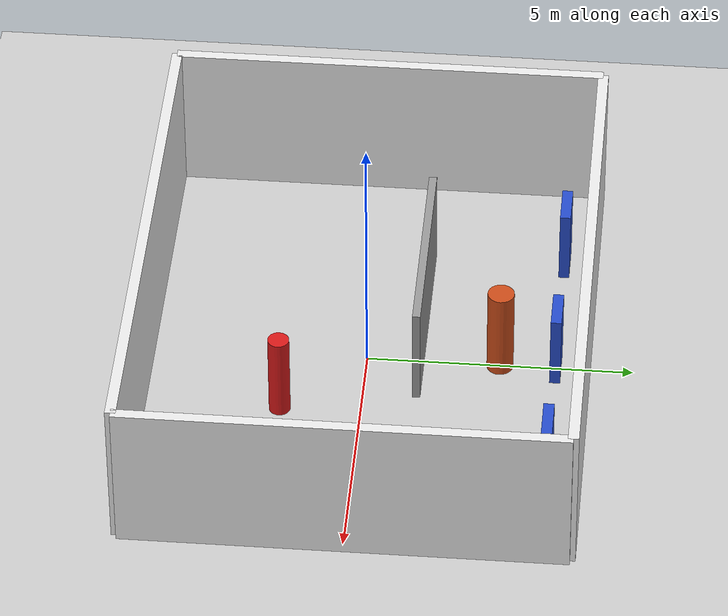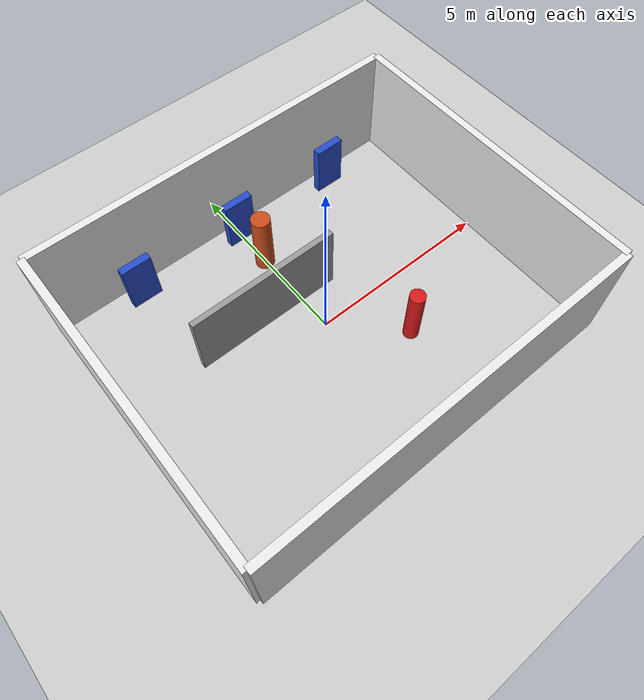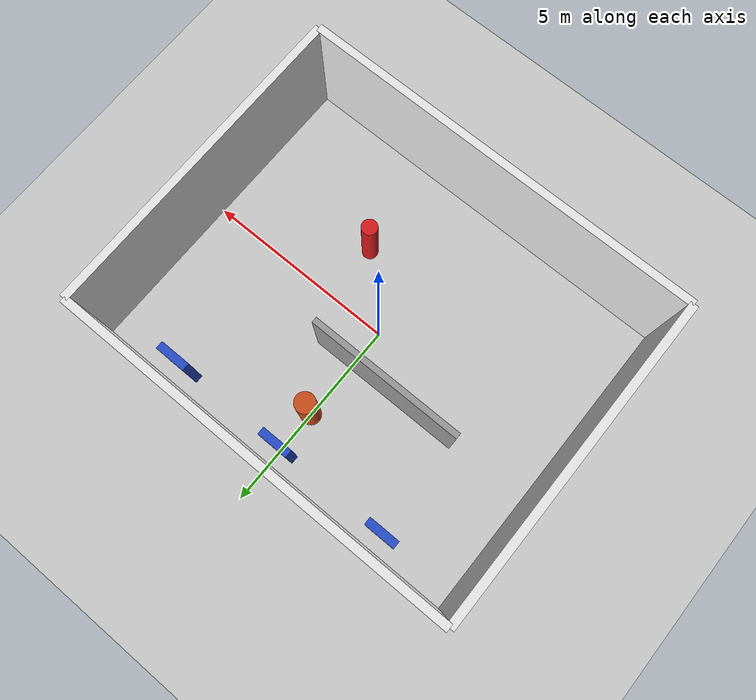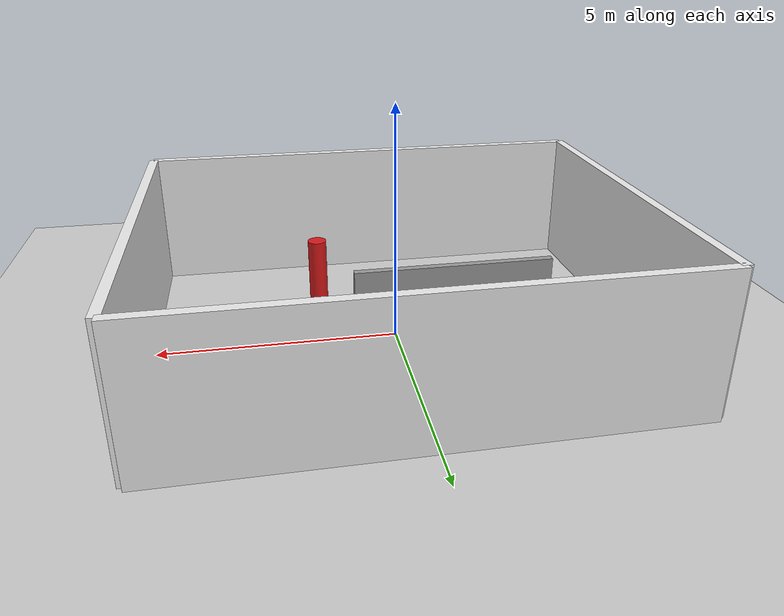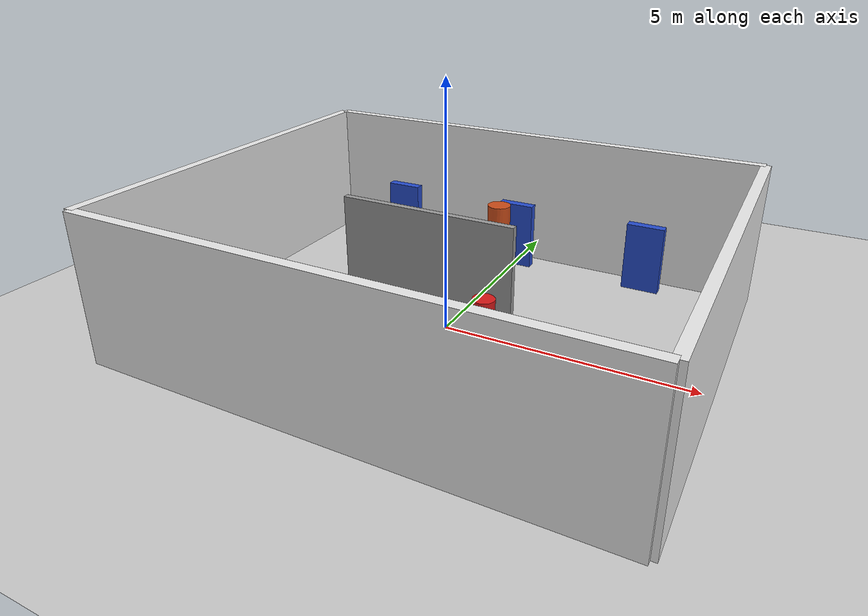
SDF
<?xml version="1.0"?>
<sdf version="1.6">
  <world name="panel_room">

    <physics name="default_physics" default="0" type="ode">
      <max_step_size>0.001</max_step_size>
      <real_time_factor>1.0</real_time_factor>
      <real_time_update_rate>1000</real_time_update_rate>
    </physics>

    <!-- gazebo_ros_state プラグイン -->
    <plugin name="gazebo_ros_state" filename="libgazebo_ros_state.so">
      <ros>
        <namespace>/gazebo</namespace>
      </ros>
      <update_rate>10.0</update_rate>
    </plugin>

    <light name="sun" type="directional">
      <cast_shadows>true</cast_shadows>
      <pose>0 0 10 0 0 0</pose>
      <diffuse>0.9 0.9 0.9 1</diffuse>
      <specular>0.3 0.3 0.3 1</specular>
      <direction>-0.5 0.1 -0.9</direction>
    </light>

    <model name="ground_plane">
      <static>true</static>
      <link name="link">
        <collision name="collision">
          <geometry><plane><normal>0 0 1</normal></plane></geometry>
          <surface><friction><ode><mu>100</mu><mu2>50</mu2></ode></friction></surface>
        </collision>
        <visual name="visual">
          <cast_shadows>false</cast_shadows>
          <geometry><plane><normal>0 0 1</normal><size>20 20</size></plane></geometry>
          <material><script><name>Gazebo/Grey</name></script></material>
        </visual>
      </link>
    </model>

    <model name="wall_south">
      <static>true</static><pose>0 -4.1 1.5 0 0 0</pose>
      <link name="link">
        <collision name="col"><geometry><box><size>10.2 0.2 3.0</size></box></geometry></collision>
        <visual name="vis"><geometry><box><size>10.2 0.2 3.0</size></box></geometry>
          <material><script><name>Gazebo/White</name></script></material></visual>
      </link>
    </model>
    <model name="wall_north">
      <static>true</static><pose>0 4.1 1.5 0 0 0</pose>
      <link name="link">
        <collision name="col"><geometry><box><size>10.2 0.2 3.0</size></box></geometry></collision>
        <visual name="vis"><geometry><box><size>10.2 0.2 3.0</size></box></geometry>
          <material><script><name>Gazebo/White</name></script></material></visual>
      </link>
    </model>
    <model name="wall_west">
      <static>true</static><pose>-5.1 0 1.5 0 0 0</pose>
      <link name="link">
        <collision name="col"><geometry><box><size>0.2 8.2 3.0</size></box></geometry></collision>
        <visual name="vis"><geometry><box><size>0.2 8.2 3.0</size></box></geometry>
          <material><script><name>Gazebo/White</name></script></material></visual>
      </link>
    </model>
    <model name="wall_east">
      <static>true</static><pose>5.1 0 1.5 0 0 0</pose>
      <link name="link">
        <collision name="col"><geometry><box><size>0.2 8.2 3.0</size></box></geometry></collision>
        <visual name="vis"><geometry><box><size>0.2 8.2 3.0</size></box></geometry>
          <material><script><name>Gazebo/White</name></script></material></visual>
      </link>
    </model>

    <!-- 通路仕切り -->
    <model name="partition_west">
      <static>true</static><pose>-1.0 1.0 1.0 0 0 0</pose>
      <link name="link">
        <collision name="col"><geometry><box><size>4.0 0.15 2.0</size></box></geometry></collision>
        <visual name="vis"><geometry><box><size>4.0 0.15 2.0</size></box></geometry>
          <material><script><name>Gazebo/Grey</name></script></material></visual>
      </link>
    </model>

    <!-- 配電盤 -->
    <model name="panel_01">
      <static>true</static><pose>-3.0 3.55 0.75 0 0 0</pose>
      <link name="link">
        <collision name="col"><geometry><box><size>0.8 0.2 1.5</size></box></geometry></collision>
        <visual name="vis"><geometry><box><size>0.8 0.2 1.5</size></box></geometry>
          <material><script><name>Gazebo/Blue</name></script></material></visual>
      </link>
    </model>
    <model name="panel_02">
      <static>true</static><pose>0.0 3.55 0.75 0 0 0</pose>
      <link name="link">
        <collision name="col"><geometry><box><size>0.8 0.2 1.5</size></box></geometry></collision>
        <visual name="vis"><geometry><box><size>0.8 0.2 1.5</size></box></geometry>
          <material><script><name>Gazebo/Blue</name></script></material></visual>
      </link>
    </model>
    <model name="panel_03">
      <static>true</static><pose>3.0 3.55 0.75 0 0 0</pose>
      <link name="link">
        <collision name="col"><geometry><box><size>0.8 0.2 1.5</size></box></geometry></collision>
        <visual name="vis"><geometry><box><size>0.8 0.2 1.5</size></box></geometry>
          <material><script><name>Gazebo/Blue</name></script></material></visual>
      </link>
    </model>

    <!-- 試験員模擬: 動く cylinder (walk.dae 代替) -->
    <!-- static=true にすることで重力・物理による転倒を防ぎ、         -->
    <!-- set_entity_state で確実に移動できる。LiDAR 当たり判定は維持。 -->
    <model name="inspector">
      <static>true</static>
      <pose>0.0 2.5 0.9 0 0 0</pose>
      <link name="link">
        <collision name="col">
          <geometry><cylinder><radius>0.25</radius><length>1.8</length></cylinder></geometry>
        </collision>
        <visual name="vis">
          <geometry><cylinder><radius>0.25</radius><length>1.8</length></cylinder></geometry>
          <material>
            <ambient>0.8 0.3 0.1 1</ambient>
            <diffuse>0.8 0.3 0.1 1</diffuse>
          </material>
        </visual>
      </link>
      <!-- Gazebo の set_model_state サービスで位置を制御するか
           person_mover.py で自動制御する -->
    </model>

    <!-- ── ランダム移動障害物 "wanderer" (人間に模した円柱) ───────── -->
    <model name="wanderer">
      <pose>1.5 -1.5 0.85 0 0 0</pose>
      <link name="link">
        <inertial><mass>70.0</mass>
          <inertia><ixx>1.0</ixx><ixy>0</ixy><ixz>0</ixz>
                   <iyy>1.0</iyy><iyz>0</iyz><izz>0.3</izz></inertia>
        </inertial>
        <collision name="col">
          <geometry><cylinder><radius>0.2</radius><length>1.7</length></cylinder></geometry>
        </collision>
        <visual name="vis">
          <geometry><cylinder><radius>0.2</radius><length>1.7</length></cylinder></geometry>
          <material>
            <ambient>0.85 0.1 0.1 1</ambient>
            <diffuse>0.85 0.1 0.1 1</diffuse>
          </material>
        </visual>
      </link>
    </model>

  </world>
</sdf>
